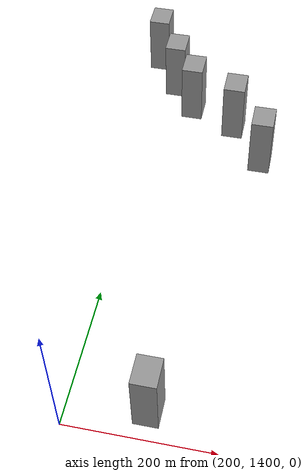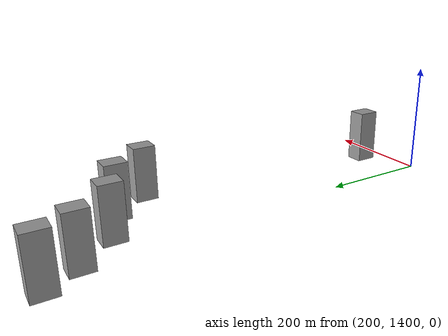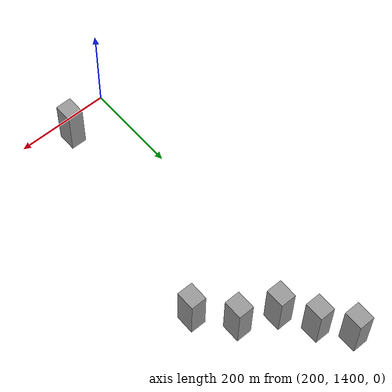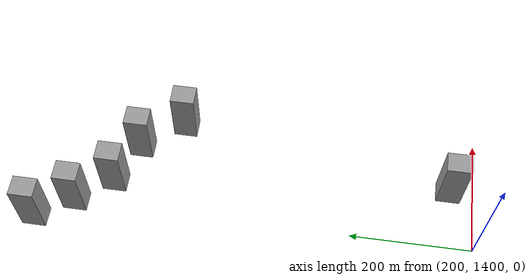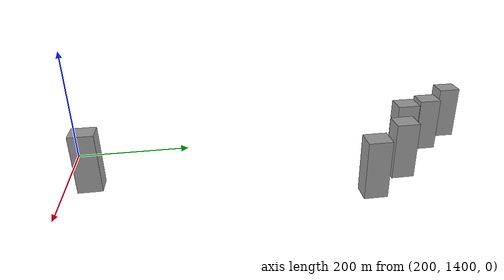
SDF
<sdf version="1.7">
 <world name="default">
  <model name="huge_building_97">
   <link name="link">
    <inertial>
     <mass>137299</mass>
     <inertia>
      <ixx>1.37911e+08</ixx>
      <ixy>0</ixy>
      <ixz>0</ixz>
      <iyy>1.32035e+08</iyy>
      <iyz>0</iyz>
      <izz>3.13216e+07</izz>
     </inertia>
    </inertial>
    <visual name="visual">
     <geometry><box><size>33.3468 40.3177 102.117</size></box></geometry>
     <material>
      <script><name>Gazebo/Grey</name><uri>file://media/materials/scripts/gazebo.material</uri></script>
      <shader type="pixel"/>
     </material>
    </visual>
    <collision name="collision">
     <geometry><box><size>33.3468 40.3177 102.117</size></box></geometry>
     <surface>
      <friction>
       <ode><mu>1</mu><mu2>1</mu2><fdir1>0 0 0</fdir1><slip1>0</slip1><slip2>0</slip2></ode>
       <torsional>
        <coefficient>1</coefficient>
        <patch_radius>0</patch_radius>
        <surface_radius>0</surface_radius>
        <use_patch_radius>1</use_patch_radius>
        <ode><slip>0</slip></ode>
       </torsional>
      </friction>
      <bounce><restitution_coefficient>0</restitution_coefficient><threshold>1e+06</threshold></bounce>
      <contact>
       <collide_without_contact>0</collide_without_contact>
       <collide_without_contact_bitmask>1</collide_without_contact_bitmask>
       <collide_bitmask>1</collide_bitmask>
       <ode>
        <soft_cfm>0</soft_cfm>
        <soft_erp>0.2</soft_erp>
        <kp>1e+13</kp>
        <kd>1</kd>
        <max_vel>0.01</max_vel>
        <min_depth>0</min_depth>
       </ode>
       <bullet>
        <split_impulse>1</split_impulse>
        <split_impulse_penetration_threshold>-0.01</split_impulse_penetration_threshold>
        <soft_cfm>0</soft_cfm>
        <soft_erp>0.2</soft_erp>
        <kp>1e+13</kp>
        <kd>1</kd>
       </bullet>
      </contact>
     </surface>
    </collision>
   </link>
   <static>0</static>
   <pose>174.015 2126.68 29 0 -0 0</pose>
  </model>
  <model name="huge_building_98">
   <link name="link">
    <inertial>
     <mass>137299</mass>
     <inertia>
      <ixx>1.37911e+08</ixx>
      <ixy>0</ixy>
      <ixz>0</ixz>
      <iyy>1.32035e+08</iyy>
      <iyz>0</iyz>
      <izz>3.13216e+07</izz>
     </inertia>
    </inertial>
    <visual name="visual">
     <geometry><box><size>33.3468 40.3177 102.117</size></box></geometry>
     <material>
      <script><name>Gazebo/Grey</name><uri>file://media/materials/scripts/gazebo.material</uri></script>
      <shader type="pixel"/>
     </material>
    </visual>
    <collision name="collision">
     <geometry><box><size>33.3468 40.3177 102.117</size></box></geometry>
     <surface>
      <friction>
       <ode><mu>1</mu><mu2>1</mu2><fdir1>0 0 0</fdir1><slip1>0</slip1><slip2>0</slip2></ode>
       <torsional>
        <coefficient>1</coefficient>
        <patch_radius>0</patch_radius>
        <surface_radius>0</surface_radius>
        <use_patch_radius>1</use_patch_radius>
        <ode><slip>0</slip></ode>
       </torsional>
      </friction>
      <bounce><restitution_coefficient>0</restitution_coefficient><threshold>1e+06</threshold></bounce>
      <contact>
       <collide_without_contact>0</collide_without_contact>
       <collide_without_contact_bitmask>1</collide_without_contact_bitmask>
       <collide_bitmask>1</collide_bitmask>
       <ode>
        <soft_cfm>0</soft_cfm>
        <soft_erp>0.2</soft_erp>
        <kp>1e+13</kp>
        <kd>1</kd>
        <max_vel>0.01</max_vel>
        <min_depth>0</min_depth>
       </ode>
       <bullet>
        <split_impulse>1</split_impulse>
        <split_impulse_penetration_threshold>-0.01</split_impulse_penetration_threshold>
        <soft_cfm>0</soft_cfm>
        <soft_erp>0.2</soft_erp>
        <kp>1e+13</kp>
        <kd>1</kd>
       </bullet>
      </contact>
     </surface>
    </collision>
   </link>
   <static>0</static>
   <pose>214.176 2067.53 25 0 -0 0</pose>
  </model>
  <model name="huge_building_99">
   <link name="link">
    <inertial>
     <mass>137299</mass>
     <inertia>
      <ixx>1.37911e+08</ixx>
      <ixy>0</ixy>
      <ixz>0</ixz>
      <iyy>1.32035e+08</iyy>
      <iyz>0</iyz>
      <izz>3.13216e+07</izz>
     </inertia>
    </inertial>
    <visual name="visual">
     <geometry><box><size>33.3468 40.3177 102.117</size></box></geometry>
     <material>
      <script><name>Gazebo/Grey</name><uri>file://media/materials/scripts/gazebo.material</uri></script>
      <shader type="pixel"/>
     </material>
    </visual>
    <collision name="collision">
     <geometry><box><size>33.3468 40.3177 102.117</size></box></geometry>
     <surface>
      <friction>
       <ode><mu>1</mu><mu2>1</mu2><fdir1>0 0 0</fdir1><slip1>0</slip1><slip2>0</slip2></ode>
       <torsional>
        <coefficient>1</coefficient>
        <patch_radius>0</patch_radius>
        <surface_radius>0</surface_radius>
        <use_patch_radius>1</use_patch_radius>
        <ode><slip>0</slip></ode>
       </torsional>
      </friction>
      <bounce><restitution_coefficient>0</restitution_coefficient><threshold>1e+06</threshold></bounce>
      <contact>
       <collide_without_contact>0</collide_without_contact>
       <collide_without_contact_bitmask>1</collide_without_contact_bitmask>
       <collide_bitmask>1</collide_bitmask>
       <ode>
        <soft_cfm>0</soft_cfm>
        <soft_erp>0.2</soft_erp>
        <kp>1e+13</kp>
        <kd>1</kd>
        <max_vel>0.01</max_vel>
        <min_depth>0</min_depth>
       </ode>
       <bullet>
        <split_impulse>1</split_impulse>
        <split_impulse_penetration_threshold>-0.01</split_impulse_penetration_threshold>
        <soft_cfm>0</soft_cfm>
        <soft_erp>0.2</soft_erp>
        <kp>1e+13</kp>
        <kd>1</kd>
       </bullet>
      </contact>
     </surface>
    </collision>
   </link>
   <static>0</static>
   <pose>254.348 2005.61 36 0 -0 0</pose>
  </model>
  <model name="huge_building_100">
   <link name="link">
    <inertial>
     <mass>137299</mass>
     <inertia>
      <ixx>1.37911e+08</ixx>
      <ixy>0</ixy>
      <ixz>0</ixz>
      <iyy>1.32035e+08</iyy>
      <iyz>0</iyz>
      <izz>3.13216e+07</izz>
     </inertia>
    </inertial>
    <visual name="visual">
     <geometry><box><size>33.3468 40.3177 102.117</size></box></geometry>
     <material>
      <script><name>Gazebo/Grey</name><uri>file://media/materials/scripts/gazebo.material</uri></script>
      <shader type="pixel"/>
     </material>
    </visual>
    <collision name="collision">
     <geometry><box><size>33.3468 40.3177 102.117</size></box></geometry>
     <surface>
      <friction>
       <ode><mu>1</mu><mu2>1</mu2><fdir1>0 0 0</fdir1><slip1>0</slip1><slip2>0</slip2></ode>
       <torsional>
        <coefficient>1</coefficient>
        <patch_radius>0</patch_radius>
        <surface_radius>0</surface_radius>
        <use_patch_radius>1</use_patch_radius>
        <ode><slip>0</slip></ode>
       </torsional>
      </friction>
      <bounce><restitution_coefficient>0</restitution_coefficient><threshold>1e+06</threshold></bounce>
      <contact>
       <collide_without_contact>0</collide_without_contact>
       <collide_without_contact_bitmask>1</collide_without_contact_bitmask>
       <collide_bitmask>1</collide_bitmask>
       <ode>
        <soft_cfm>0</soft_cfm>
        <soft_erp>0.2</soft_erp>
        <kp>1e+13</kp>
        <kd>1</kd>
        <max_vel>0.01</max_vel>
        <min_depth>0</min_depth>
       </ode>
       <bullet>
        <split_impulse>1</split_impulse>
        <split_impulse_penetration_threshold>-0.01</split_impulse_penetration_threshold>
        <soft_cfm>0</soft_cfm>
        <soft_erp>0.2</soft_erp>
        <kp>1e+13</kp>
        <kd>1</kd>
       </bullet>
      </contact>
     </surface>
    </collision>
   </link>
   <static>0</static>
   <pose>327.695 1973.51 36 0 -0 0</pose>
  </model>
  <model name="huge_building_101">
   <link name="link">
    <inertial>
     <mass>137299</mass>
     <inertia>
      <ixx>1.37911e+08</ixx>
      <ixy>0</ixy>
      <ixz>0</ixz>
      <iyy>1.32035e+08</iyy>
      <iyz>0</iyz>
      <izz>3.13216e+07</izz>
     </inertia>
    </inertial>
    <visual name="visual">
     <geometry><box><size>33.3468 40.3177 102.117</size></box></geometry>
     <material>
      <script><name>Gazebo/Grey</name><uri>file://media/materials/scripts/gazebo.material</uri></script>
      <shader type="pixel"/>
     </material>
    </visual>
    <collision name="collision">
     <geometry><box><size>33.3468 40.3177 102.117</size></box></geometry>
     <surface>
      <friction>
       <ode><mu>1</mu><mu2>1</mu2><fdir1>0 0 0</fdir1><slip1>0</slip1><slip2>0</slip2></ode>
       <torsional>
        <coefficient>1</coefficient>
        <patch_radius>0</patch_radius>
        <surface_radius>0</surface_radius>
        <use_patch_radius>1</use_patch_radius>
        <ode><slip>0</slip></ode>
       </torsional>
      </friction>
      <bounce><restitution_coefficient>0</restitution_coefficient><threshold>1e+06</threshold></bounce>
      <contact>
       <collide_without_contact>0</collide_without_contact>
       <collide_without_contact_bitmask>1</collide_without_contact_bitmask>
       <collide_bitmask>1</collide_bitmask>
       <ode>
        <soft_cfm>0</soft_cfm>
        <soft_erp>0.2</soft_erp>
        <kp>1e+13</kp>
        <kd>1</kd>
        <max_vel>0.01</max_vel>
        <min_depth>0</min_depth>
       </ode>
       <bullet>
        <split_impulse>1</split_impulse>
        <split_impulse_penetration_threshold>-0.01</split_impulse_penetration_threshold>
        <soft_cfm>0</soft_cfm>
        <soft_erp>0.2</soft_erp>
        <kp>1e+13</kp>
        <kd>1</kd>
       </bullet>
      </contact>
     </surface>
    </collision>
   </link>
   <static>0</static>
   <pose>381.44 1904.71 36 0 -0 0</pose>
  </model>
  <model name="huge_building_107">
   <link name="link">
    <inertial>
     <mass>137299</mass>
     <inertia>
      <ixx>1.37911e+08</ixx>
      <ixy>0</ixy>
      <ixz>0</ixz>
      <iyy>1.32035e+08</iyy>
      <iyz>0</iyz>
      <izz>3.13216e+07</izz>
     </inertia>
    </inertial>
    <visual name="visual">
     <geometry><box><size>33.3468 40.3177 102.117</size></box></geometry>
     <material>
      <script><name>Gazebo/Grey</name><uri>file://media/materials/scripts/gazebo.material</uri></script>
      <shader type="pixel"/>
     </material>
    </visual>
    <collision name="collision">
     <geometry><box><size>33.3468 40.3177 102.117</size></box></geometry>
     <surface>
      <friction>
       <ode><mu>1</mu><mu2>1</mu2><fdir1>0 0 0</fdir1><slip1>0</slip1><slip2>0</slip2></ode>
       <torsional>
        <coefficient>1</coefficient>
        <patch_radius>0</patch_radius>
        <surface_radius>0</surface_radius>
        <use_patch_radius>1</use_patch_radius>
        <ode><slip>0</slip></ode>
       </torsional>
      </friction>
      <bounce><restitution_coefficient>0</restitution_coefficient><threshold>1e+06</threshold></bounce>
      <contact>
       <collide_without_contact>0</collide_without_contact>
       <collide_without_contact_bitmask>1</collide_without_contact_bitmask>
       <collide_bitmask>1</collide_bitmask>
       <ode>
        <soft_cfm>0</soft_cfm>
        <soft_erp>0.2</soft_erp>
        <kp>1e+13</kp>
        <kd>1</kd>
        <max_vel>0.01</max_vel>
        <min_depth>0</min_depth>
       </ode>
       <bullet>
        <split_impulse>1</split_impulse>
        <split_impulse_penetration_threshold>-0.01</split_impulse_penetration_threshold>
        <soft_cfm>0</soft_cfm>
        <soft_erp>0.2</soft_erp>
        <kp>1e+13</kp>
        <kd>1</kd>
       </bullet>
      </contact>
     </surface>
    </collision>
   </link>
   <static>0</static>
   <pose>304.714 1440.8 47 0 -0 0</pose>
  </model>
 </world>
</sdf>
